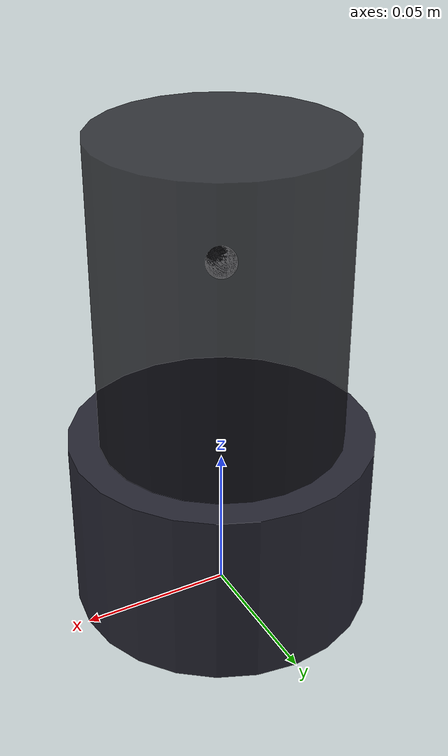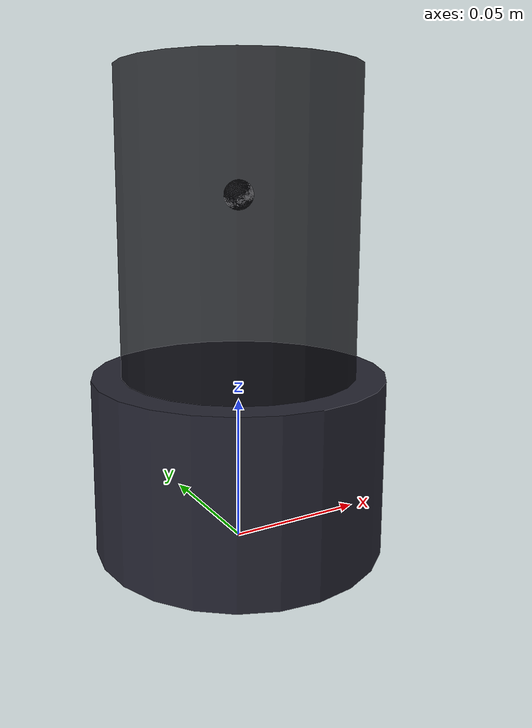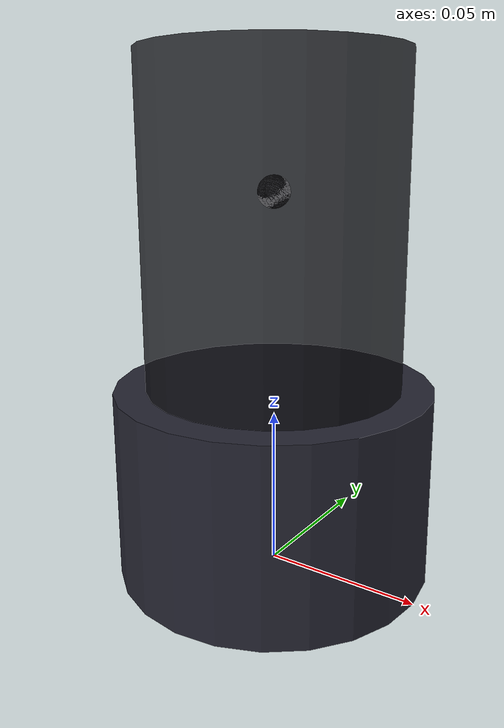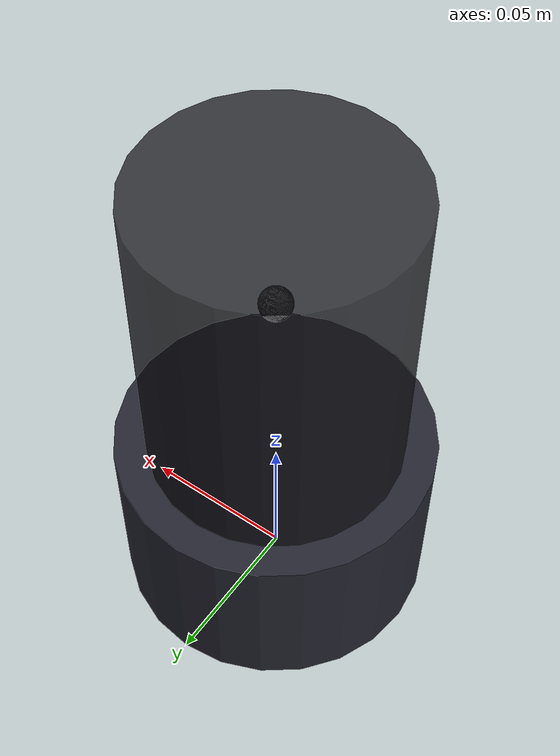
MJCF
<mujoco>
  <!-- LiDAR sensor with rangefinder sensors -->
  <asset>
    <material name="lidar_body" rgba="0.15 0.15 0.2 1"/>
    <material name="lidar_dome" rgba="0.1 0.1 0.12 0.8"/>
  </asset>

  <worldbody>
    <body name="lidar_body">
      <!-- Base -->
      <geom name="lidar_base" type="cylinder" size="0.05 0.03" pos="0 0 0.03" material="lidar_body"/>
      <!-- Dome -->
      <geom name="lidar_dome" type="cylinder" size="0.04 0.05" pos="0 0 0.11" material="lidar_dome"/>

      <!-- Sites for rangefinder sensors (16-beam simulation) -->
      <site name="lidar_site_0" pos="0 0 0.12" euler="0 -15 0"/>
      <site name="lidar_site_1" pos="0 0 0.12" euler="0 -10 22.5"/>
      <site name="lidar_site_2" pos="0 0 0.12" euler="0 -5 45"/>
      <site name="lidar_site_3" pos="0 0 0.12" euler="0 0 67.5"/>
      <site name="lidar_site_4" pos="0 0 0.12" euler="0 5 90"/>
      <site name="lidar_site_5" pos="0 0 0.12" euler="0 10 112.5"/>
      <site name="lidar_site_6" pos="0 0 0.12" euler="0 15 135"/>
      <site name="lidar_site_7" pos="0 0 0.12" euler="0 10 157.5"/>
    </body>
  </worldbody>

  <sensor>
    <!-- Rangefinder sensors for each beam direction -->
    <rangefinder name="lidar_beam_0" site="lidar_site_0"/>
    <rangefinder name="lidar_beam_1" site="lidar_site_1"/>
    <rangefinder name="lidar_beam_2" site="lidar_site_2"/>
    <rangefinder name="lidar_beam_3" site="lidar_site_3"/>
    <rangefinder name="lidar_beam_4" site="lidar_site_4"/>
    <rangefinder name="lidar_beam_5" site="lidar_site_5"/>
    <rangefinder name="lidar_beam_6" site="lidar_site_6"/>
    <rangefinder name="lidar_beam_7" site="lidar_site_7"/>
  </sensor>
</mujoco>
